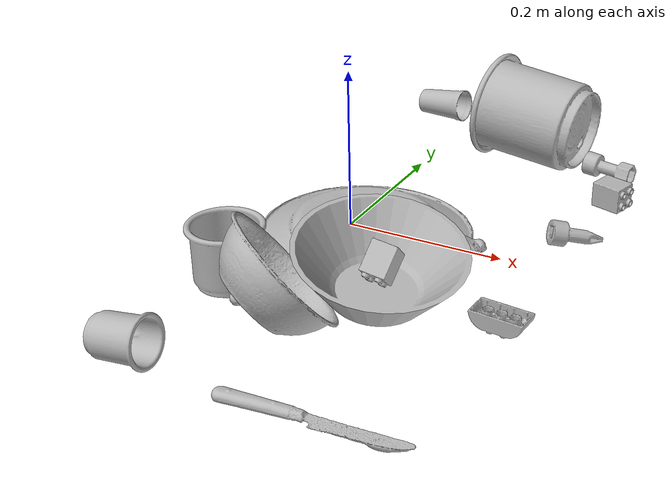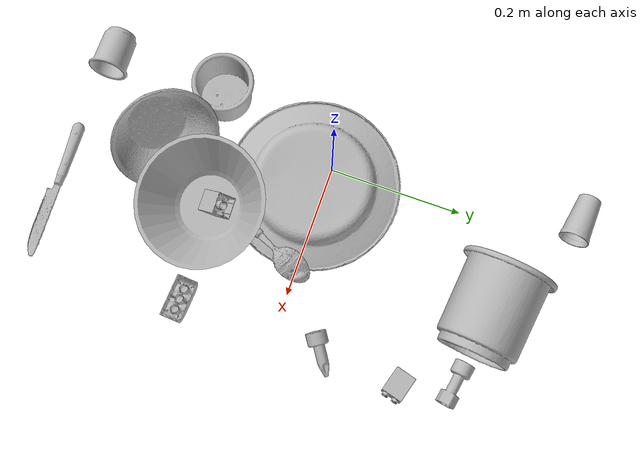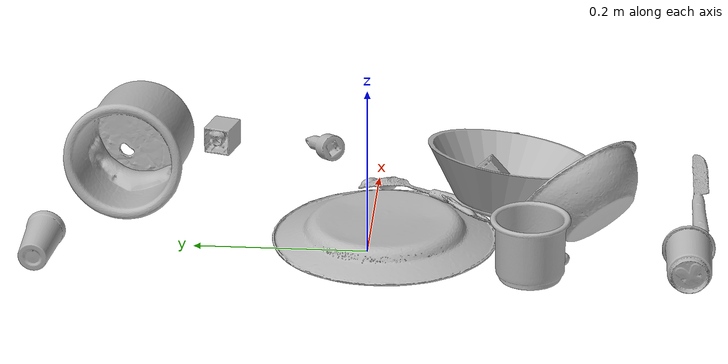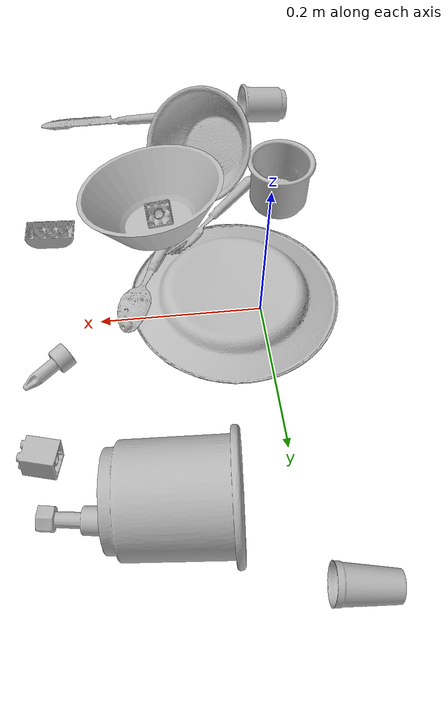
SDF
<sdf version="1.4">
  <world name="default">
    <light name="light1" type="point">
      <pose>0 0 1 0 0 0</pose>
      <diffuse>3 3 3 1</diffuse>
      <specular>3 3 3 1</specular>
    </light>
    <light name="light2" type="point">
      <pose>0 0.5 2 0 0 0</pose>
      <diffuse>1 1 1 1</diffuse>
      <specular>1 1 1 1</specular>
    </light>
    <light name="light3" type="point">
      <pose>0 0.5 2 0 0 0</pose>
      <diffuse>3 3 3 1</diffuse>
      <specular>3 3 3 1</specular>
    </light>
    <scene>
      <ambient>0.7 0.7 0.7</ambient>
    </scene>
    <model name="plate1">
      <link name="link_plate1">
        <collision name="default">
          <geometry>
            <mesh>
              <uri>model://plate/collision_meshes/collision.obj</uri>
              <scale>1.0 1.0 1.0</scale>
            </mesh>
          </geometry>
          <surface>
            <friction>
              <ode>
                <mu>0.5</mu>
                <mu2>0.5</mu2>
              </ode>
            </friction>
          <contact>
        <ode>
            <max_vel>0</max_vel>
            <min_depth>0.0001</min_depth>
            <kp>1e8</kp>
        </ode>
    </contact></surface>
        </collision>
        <visual name="default">
          <geometry>
            <mesh>
              <uri>model://plate/visual_meshes/visual.dae</uri>
              <scale>1.0 1.0 1.0</scale>
            </mesh>
          </geometry>
        </visual>
        <inertial>
          <mass>0.188415065407753</mass>
          <pose>-0.0006044681649655104 0.0002782578521873802 -0.0010561991948634386 0.0022187970116661695 -0.0032254679619122127 0.4526056514331616</pose>
          <inertia>
            <ixx>0.00088140933</ixx>
            <iyy>0.000872979</iyy>
            <izz>0.0017239053</izz>
            <ixy>0</ixy>
            <ixz>0</ixz>
            <iyz>0</iyz>
          </inertia>
        </inertial>
      </link>
      <pose>0.03118111379444599 -0.017968835309147835 0.013945046812295914 3.125606614539556 -0.007456971300145221 -1.6285671622363675</pose>
    </model>
    <model name="cup1">
      <link name="link_cup1">
        <collision name="default">
          <geometry>
            <mesh>
              <uri>model://d_cups/collision_meshes/collision.obj</uri>
              <scale>2.0 2.0 2.0</scale>
            </mesh>
          </geometry>
          <surface>
            <friction>
              <ode>
                <mu>0.5</mu>
                <mu2>0.5</mu2>
              </ode>
            </friction>
          <contact>
        <ode>
            <max_vel>0</max_vel>
            <min_depth>0.0001</min_depth>
            <kp>1e8</kp>
        </ode>
    </contact></surface>
        </collision>
        <visual name="default">
          <geometry>
            <mesh>
              <uri>model://d_cups/visual_meshes/visual.dae</uri>
              <scale>2.0 2.0 2.0</scale>
            </mesh>
          </geometry>
        </visual>
        <inertial>
          <mass>0.39843064546585083</mass>
          <pose>0.0016136104241013527 0.0038234808016568422 -0.004533304367214441 0.24012134810188138 -0.24709791903716813 0.5942561701250738</pose>
          <inertia>
            <ixx>0.0013343208</ixx>
            <iyy>0.001330459</iyy>
            <izz>0.001207787</izz>
            <ixy>0</ixy>
            <ixz>0</ixz>
            <iyz>0</iyz>
          </inertia>
        </inertial>
      </link>
      <pose>0.1356990486383438 0.28296181559562683 0.06489401310682297 -1.4810713673452192 0.351147008605633 1.4968748761817927</pose>
    </model>
    <model name="silverware1">
      <link name="link_silverware1">
        <collision name="default">
          <geometry>
            <mesh>
              <uri>model://knife/collision_meshes/collision.obj</uri>
              <scale>1.0 1.0 1.0</scale>
            </mesh>
          </geometry>
          <surface>
            <friction>
              <ode>
                <mu>0.5</mu>
                <mu2>0.5</mu2>
              </ode>
            </friction>
          <contact>
        <ode>
            <max_vel>0</max_vel>
            <min_depth>0.0001</min_depth>
            <kp>1e8</kp>
        </ode>
    </contact></surface>
        </collision>
        <visual name="default">
          <geometry>
            <mesh>
              <uri>model://knife/visual_meshes/visual.dae</uri>
              <scale>1.0 1.0 1.0</scale>
            </mesh>
          </geometry>
        </visual>
        <inertial>
          <mass>0.027211036533117294</mass>
          <pose>-0.02378525771200657 0.0015275125624611974 5.062023410573602e-05 0.0730549860308878 0.01724841828598218 -0.007409817457274567</pose>
          <inertia>
            <ixx>7.723595e-07</ixx>
            <iyy>0.000104540384</iyy>
            <izz>0.00010478913</izz>
            <ixy>0</ixy>
            <ixz>0</ixz>
            <iyz>0</iyz>
          </inertia>
        </inertial>
      </link>
      <pose>0.1648445725440979 -0.3793775141239166 0.00794657226651907 -0.02384482661828856 -0.014543236658726168 0.026745643860570555</pose>
    </model>
    <model name="silverware2">
      <link name="link_silverware2">
        <collision name="default">
          <geometry>
            <mesh>
              <uri>model://fork/collision_meshes/collision.obj</uri>
              <scale>1.0 1.0 1.0</scale>
            </mesh>
          </geometry>
          <surface>
            <friction>
              <ode>
                <mu>0.5</mu>
                <mu2>0.5</mu2>
              </ode>
            </friction>
          <contact>
        <ode>
            <max_vel>0</max_vel>
            <min_depth>0.0001</min_depth>
            <kp>1e8</kp>
        </ode>
    </contact></surface>
        </collision>
        <visual name="default">
          <geometry>
            <mesh>
              <uri>model://fork/visual_meshes/visual.dae</uri>
              <scale>1.0 1.0 1.0</scale>
            </mesh>
          </geometry>
        </visual>
        <inertial>
          <mass>0.01567319966852665</mass>
          <pose>-0.029570044949650764 0.00046588233090005815 0.0003218860656488687 -0.013551693849150472 -0.010977837004960822 0.014453899894816049</pose>
          <inertia>
            <ixx>5.494343e-07</ixx>
            <iyy>4.0918225e-05</iyy>
            <izz>4.1163967e-05</izz>
            <ixy>0</ixy>
            <ixz>0</ixz>
            <iyz>0</iyz>
          </inertia>
        </inertial>
      </link>
      <pose>0.040293775498867035 -0.15600663423538208 0.012734108604490757 0.5841052923562078 -0.046264062135684014 0.8561240126299464</pose>
    </model>
    <model name="silverware3">
      <link name="link_silverware3">
        <collision name="default">
          <geometry>
            <mesh>
              <uri>model://spoon/collision_meshes/collision.obj</uri>
              <scale>1.0 1.0 1.0</scale>
            </mesh>
          </geometry>
          <surface>
            <friction>
              <ode>
                <mu>0.5</mu>
                <mu2>0.5</mu2>
              </ode>
            </friction>
          <contact>
        <ode>
            <max_vel>0</max_vel>
            <min_depth>0.0001</min_depth>
            <kp>1e8</kp>
        </ode>
    </contact></surface>
        </collision>
        <visual name="default">
          <geometry>
            <mesh>
              <uri>model://spoon/visual_meshes/visual.dae</uri>
              <scale>1.0 1.0 1.0</scale>
            </mesh>
          </geometry>
        </visual>
        <inertial>
          <mass>0.020675545558333397</mass>
          <pose>-0.0055263228714466095 -0.001603417913429439 -0.0007271659560501575 0.03521671071703309 -0.03906584129558259 0.006150610048623938</pose>
          <inertia>
            <ixx>1.1500075e-06</ixx>
            <iyy>7.866978e-05</iyy>
            <izz>7.923691e-05</izz>
            <ixy>0</ixy>
            <ixz>0</ixz>
            <iyz>0</iyz>
          </inertia>
        </inertial>
      </link>
      <pose>0.13176225125789642 -0.06790797412395477 0.011737965978682041 -2.9839511477251963 -0.051866535511673556 1.1214552327225205</pose>
    </model>
    <model name="cup3">
      <link name="link_cup3">
        <collision name="default">
          <geometry>
            <mesh>
              <uri>model://h_cups/collision_meshes/collision.obj</uri>
              <scale>1.0 1.0 1.0</scale>
            </mesh>
          </geometry>
          <surface>
            <friction>
              <ode>
                <mu>0.5</mu>
                <mu2>0.5</mu2>
              </ode>
            </friction>
          <contact>
        <ode>
            <max_vel>0</max_vel>
            <min_depth>0.0001</min_depth>
            <kp>1e8</kp>
        </ode>
    </contact></surface>
        </collision>
        <visual name="default">
          <geometry>
            <mesh>
              <uri>model://h_cups/visual_meshes/visual.dae</uri>
              <scale>1.0 1.0 1.0</scale>
            </mesh>
          </geometry>
        </visual>
        <inertial>
          <mass>0.08491484075784683</mass>
          <pose>-2.702520214370452e-05 0.00023018663341645151 -0.0018405397422611713 -0.02436220805872295 0.06545280106490914 0.1288526015338695</pose>
          <inertia>
            <ixx>0.000109663546</ixx>
            <iyy>0.00010835491</iyy>
            <izz>0.00011500697</izz>
            <ixy>0</ixy>
            <ixz>0</ixz>
            <iyz>0</iyz>
          </inertia>
        </inertial>
      </link>
      <pose>-0.054049018770456314 -0.18880021572113037 0.03775813803076744 -7.115801110510779e-07 4.209232085130939e-07 2.2868400182573385</pose>
    </model>
    <model name="cup4">
      <link name="link_cup4">
        <collision name="default">
          <geometry>
            <mesh>
              <uri>model://cup_small/collision_meshes/collision.obj</uri>
              <scale>1.0 1.0 1.0</scale>
            </mesh>
          </geometry>
          <surface>
            <friction>
              <ode>
                <mu>0.5</mu>
                <mu2>0.5</mu2>
              </ode>
            </friction>
          <contact>
        <ode>
            <max_vel>0</max_vel>
            <min_depth>0.0001</min_depth>
            <kp>1e8</kp>
        </ode>
    </contact></surface>
        </collision>
        <visual name="default">
          <geometry>
            <mesh>
              <uri>model://cup_small/visual_meshes/visual.dae</uri>
              <scale>1.0 1.0 1.0</scale>
            </mesh>
          </geometry>
        </visual>
        <inertial>
          <mass>0.024220753461122513</mass>
          <pose>0.00010482438665349036 -0.00033778438228182495 -0.010742821730673313 -0.011493274197159384 -0.01528013747447056 -0.5058088438882253</pose>
          <inertia>
            <ixx>1.4260815e-05</ixx>
            <iyy>1.433438e-05</iyy>
            <izz>6.4388e-06</izz>
            <ixy>0</ixy>
            <ixz>0</ixz>
            <iyz>0</iyz>
          </inertia>
        </inertial>
      </link>
      <pose>-0.04565861076116562 0.37176111340522766 0.020058736205101013 -0.8850669699221195 -1.449487050972128 -2.3520081616501076</pose>
    </model>
    <model name="cup5">
      <link name="link_cup5">
        <collision name="default">
          <geometry>
            <mesh>
              <uri>model://b_cups/collision_meshes/collision.obj</uri>
              <scale>1.0 1.0 1.0</scale>
            </mesh>
          </geometry>
          <surface>
            <friction>
              <ode>
                <mu>0.5</mu>
                <mu2>0.5</mu2>
              </ode>
            </friction>
          <contact>
        <ode>
            <max_vel>0</max_vel>
            <min_depth>0.0001</min_depth>
            <kp>1e8</kp>
        </ode>
    </contact></surface>
        </collision>
        <visual name="default">
          <geometry>
            <mesh>
              <uri>model://b_cups/visual_meshes/visual.dae</uri>
              <scale>1.0 1.0 1.0</scale>
            </mesh>
          </geometry>
        </visual>
        <inertial>
          <mass>0.049698356539011</mass>
          <pose>0.0005182003951631486 0.0018058595014736056 -0.0013381819007918239 0.1135633586286738 0.03872473724046268 -0.3456911343663658</pose>
          <inertia>
            <ixx>3.2531058e-05</ixx>
            <iyy>3.1913434e-05</iyy>
            <izz>2.7374275e-05</izz>
            <ixy>0</ixy>
            <ixz>0</ixz>
            <iyz>0</iyz>
          </inertia>
        </inertial>
      </link>
      <pose>-0.05973048135638237 -0.36848634481430054 0.027459636330604553 1.4547488876029782 -0.46172234988592 1.657237267681847</pose>
    </model>
    <model name="bowl1">
      <link name="link_bowl1">
        <collision name="default">
          <geometry>
            <mesh>
              <uri>model://bowl/collision_meshes/collision.obj</uri>
              <scale>1.0 1.0 1.0</scale>
            </mesh>
          </geometry>
          <surface>
            <friction>
              <ode>
                <mu>0.5</mu>
                <mu2>0.5</mu2>
              </ode>
            </friction>
          <contact>
        <ode>
            <max_vel>0</max_vel>
            <min_depth>0.0001</min_depth>
            <kp>1e8</kp>
        </ode>
    </contact></surface>
        </collision>
        <visual name="default">
          <geometry>
            <mesh>
              <uri>model://bowl/visual_meshes/visual.dae</uri>
              <scale>1.0 1.0 1.0</scale>
            </mesh>
          </geometry>
        </visual>
        <inertial>
          <mass>0.10713337361812592</mass>
          <pose>0.00020444899564608932 -0.001030207029543817 -0.0008042642148211598 -0.015763984617069283 0.014546905390658569 0.7140476331316008</pose>
          <inertia>
            <ixx>0.0002460938</ixx>
            <iyy>0.00024059511</iyy>
            <izz>0.00041401442</izz>
            <ixy>0</ixy>
            <ixz>0</ixz>
            <iyz>0</iyz>
          </inertia>
        </inertial>
      </link>
      <pose>0.040631070733070374 -0.25055867433547974 0.05434286966919899 -0.38489449189566005 -0.8274987070869553 -1.825442221892426</pose>
    </model>
    <model name="bowl2">
      <link name="link_bowl2">
        <collision name="default">
          <geometry>
            <mesh>
              <uri>model://bowl_a/collision_meshes/collision.obj</uri>
              <scale>1.0 1.0 1.0</scale>
            </mesh>
          </geometry>
          <surface>
            <friction>
              <ode>
                <mu>0.5</mu>
                <mu2>0.5</mu2>
              </ode>
            </friction>
          <contact>
        <ode>
            <max_vel>0</max_vel>
            <min_depth>0.0001</min_depth>
            <kp>1e8</kp>
        </ode>
    </contact></surface>
        </collision>
        <visual name="default">
          <geometry>
            <mesh>
              <uri>model://bowl_a/visual_meshes/visual.dae</uri>
              <scale>1.0 1.0 1.0</scale>
            </mesh>
          </geometry>
        </visual>
        <inertial>
          <mass>0.5226007103919983</mass>
          <pose>0.00027867400785908103 4.731409717351198e-05 -0.0013765293406322598 -0.0009805372975616423 -0.0010938241101444716 -0.19123543414166835</pose>
          <inertia>
            <ixx>0.0014878683</ixx>
            <iyy>0.0014970028</iyy>
            <izz>0.0026462309</izz>
            <ixy>0</ixy>
            <ixz>0</ixz>
            <iyz>0</iyz>
          </inertia>
        </inertial>
      </link>
      <pose>0.120009645819664 -0.15420928597450256 0.042029086500406265 0.22303387543643344 0.010921038097334485 0.850445354431222</pose>
    </model>
    <model name="toy1">
      <link name="link_toy1">
        <collision name="default">
          <geometry>
            <mesh>
              <uri>model://f_lego_duplo/collision_meshes/collision.obj</uri>
              <scale>1.0 1.0 1.0</scale>
            </mesh>
          </geometry>
          <surface>
            <friction>
              <ode>
                <mu>0.5</mu>
                <mu2>0.5</mu2>
              </ode>
            </friction>
          <contact>
        <ode>
            <max_vel>0</max_vel>
            <min_depth>0.0001</min_depth>
            <kp>1e8</kp>
        </ode>
    </contact></surface>
        </collision>
        <visual name="default">
          <geometry>
            <mesh>
              <uri>model://f_lego_duplo/visual_meshes/visual.dae</uri>
              <scale>1.0 1.0 1.0</scale>
            </mesh>
          </geometry>
        </visual>
        <inertial>
          <mass>0.04674473777413368</mass>
          <pose>2.3694283299846575e-05 0.00013393160770647228 0.0018837876850739121 0.029838743240884653 -0.014424615896258132 -0.6756775311218791</pose>
          <inertia>
            <ixx>9.877422e-06</ixx>
            <iyy>9.965418e-06</iyy>
            <izz>8.57402e-06</izz>
            <ixy>0</ixy>
            <ixz>0</ixz>
            <iyz>0</iyz>
          </inertia>
        </inertial>
      </link>
      <pose>0.2739013731479645 0.1937108039855957 0.016207333654165268 1.5790685143055205 2.951330661411539e-05 1.30166559581792</pose>
    </model>
    <model name="toy2">
      <link name="link_toy2">
        <collision name="default">
          <geometry>
            <mesh>
              <uri>model://b_lego_duplo/collision_meshes/collision.obj</uri>
              <scale>1.0 1.0 1.0</scale>
            </mesh>
          </geometry>
          <surface>
            <friction>
              <ode>
                <mu>0.5</mu>
                <mu2>0.5</mu2>
              </ode>
            </friction>
          <contact>
        <ode>
            <max_vel>0</max_vel>
            <min_depth>0.0001</min_depth>
            <kp>1e8</kp>
        </ode>
    </contact></surface>
        </collision>
        <visual name="default">
          <geometry>
            <mesh>
              <uri>model://b_lego_duplo/visual_meshes/visual.dae</uri>
              <scale>1.0 1.0 1.0</scale>
            </mesh>
          </geometry>
        </visual>
        <inertial>
          <mass>0.046308279037475586</mass>
          <pose>-0.00011053026537410915 -9.152292477665469e-06 0.001929429010488093 -0.03749474318211287 -0.02635425030857695 0.451892682452606</pose>
          <inertia>
            <ixx>9.477338e-06</ixx>
            <iyy>9.541048e-06</iyy>
            <izz>8.443999e-06</izz>
            <ixy>0</ixy>
            <ixz>0</ixz>
            <iyz>0</iyz>
          </inertia>
        </inertial>
      </link>
      <pose>0.11473129689693451 -0.1386915147304535 0.04213862121105194 -2.398960258148396 -0.15117860197845248 -3.1355609423627873</pose>
    </model>
    <model name="toy3">
      <link name="link_toy3">
        <collision name="default">
          <geometry>
            <mesh>
              <uri>model://c_toy_airplane/collision_meshes/collision.obj</uri>
              <scale>1.0 1.0 1.0</scale>
            </mesh>
          </geometry>
          <surface>
            <friction>
              <ode>
                <mu>0.5</mu>
                <mu2>0.5</mu2>
              </ode>
            </friction>
          <contact>
        <ode>
            <max_vel>0</max_vel>
            <min_depth>0.0001</min_depth>
            <kp>1e8</kp>
        </ode>
    </contact></surface>
        </collision>
        <visual name="default">
          <geometry>
            <mesh>
              <uri>model://c_toy_airplane/visual_meshes/visual.dae</uri>
              <scale>1.0 1.0 1.0</scale>
            </mesh>
          </geometry>
        </visual>
        <inertial>
          <mass>0.03609102964401245</mass>
          <pose>-0.00023024271649774164 -4.429565194641327e-07 -0.006080531980842352 -0.006192551548155338 -0.01679780015794874 0.7654806130326979</pose>
          <inertia>
            <ixx>1.6572261e-05</ixx>
            <iyy>1.6525488e-05</iyy>
            <izz>3.890839e-06</izz>
            <ixy>0</ixy>
            <ixz>0</ixz>
            <iyz>0</iyz>
          </inertia>
        </inertial>
      </link>
      <pose>0.2435290366411209 0.2693888545036316 0.014399761334061623 -1.6156401255135069 0.4268307572074812 -1.757462901946279</pose>
    </model>
    <model name="toy4">
      <link name="link_toy4">
        <collision name="default">
          <geometry>
            <mesh>
              <uri>model://d_toy_airplane/collision_meshes/collision.obj</uri>
              <scale>1.0 1.0 1.0</scale>
            </mesh>
          </geometry>
          <surface>
            <friction>
              <ode>
                <mu>0.5</mu>
                <mu2>0.5</mu2>
              </ode>
            </friction>
          <contact>
        <ode>
            <max_vel>0</max_vel>
            <min_depth>0.0001</min_depth>
            <kp>1e8</kp>
        </ode>
    </contact></surface>
        </collision>
        <visual name="default">
          <geometry>
            <mesh>
              <uri>model://d_toy_airplane/visual_meshes/visual.dae</uri>
              <scale>1.0 1.0 1.0</scale>
            </mesh>
          </geometry>
        </visual>
        <inertial>
          <mass>0.017463792115449905</mass>
          <pose>9.410289203515276e-05 -5.80932101001963e-05 -0.011728095822036266 0.00026611357398368453 0.004679028940218743 0.5192826772494831</pose>
          <inertia>
            <ixx>5.2353053e-06</ixx>
            <iyy>5.239254e-06</iyy>
            <izz>1.5805728e-06</izz>
            <ixy>0</ixy>
            <ixz>0</ixz>
            <iyz>0</iyz>
          </inertia>
        </inertial>
      </link>
      <pose>0.26652079820632935 0.07572875171899796 0.011407840065658092 1.7958522384457387 0.23010360672194943 2.211466680922733</pose>
    </model>
    <model name="toy5">
      <link name="link_toy5">
        <collision name="default">
          <geometry>
            <mesh>
              <uri>model://a_lego_duplo/collision_meshes/collision.obj</uri>
              <scale>1.0 1.0 1.0</scale>
            </mesh>
          </geometry>
          <surface>
            <friction>
              <ode>
                <mu>0.5</mu>
                <mu2>0.5</mu2>
              </ode>
            </friction>
          <contact>
        <ode>
            <max_vel>0</max_vel>
            <min_depth>0.0001</min_depth>
            <kp>1e8</kp>
        </ode>
    </contact></surface>
        </collision>
        <visual name="default">
          <geometry>
            <mesh>
              <uri>model://a_lego_duplo/visual_meshes/visual.dae</uri>
              <scale>1.0 1.0 1.0</scale>
            </mesh>
          </geometry>
        </visual>
        <inertial>
          <mass>0.016317613422870636</mass>
          <pose>-0.00011337783507769927 0.00018517576972953975 0.00036926058237440884 -0.01411698761390393 -0.0001256633936569927 6.142942133676727e-05</pose>
          <inertia>
            <ixx>2.0920475e-06</ixx>
            <iyy>4.6866458e-06</iyy>
            <izz>5.8054516e-06</izz>
            <ixy>0</ixy>
            <ixz>0</ixz>
            <iyz>0</iyz>
          </inertia>
        </inertial>
      </link>
      <pose>0.2596915662288666 -0.14343957602977753 0.012124788947403431 -3.141281562849647 -0.015583279135935685 3.069287909599032</pose>
    </model>
  <physics type="ode">
      <max_contacts>50</max_contacts>
      <ode>
        <solver>
          <type>quick</type>
          <iters>75</iters>
        </solver>
        <constraints>
          <contact_max_correcting_vel>0</contact_max_correcting_vel>
          <contact_surface_layer>0</contact_surface_layer>
        </constraints>
      </ode>
    </physics></world>
</sdf>
